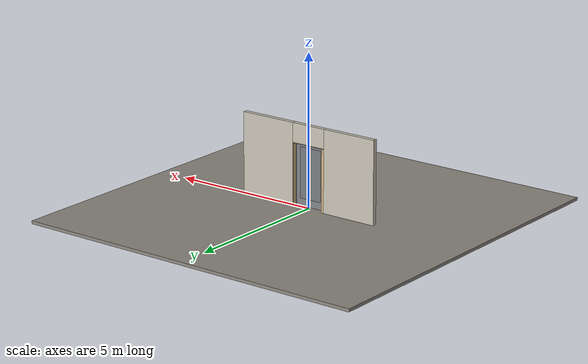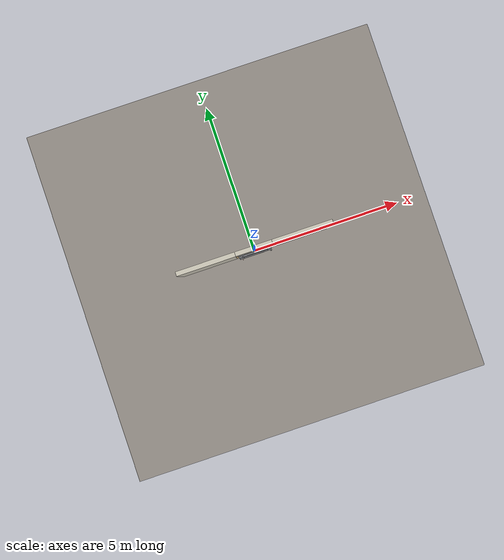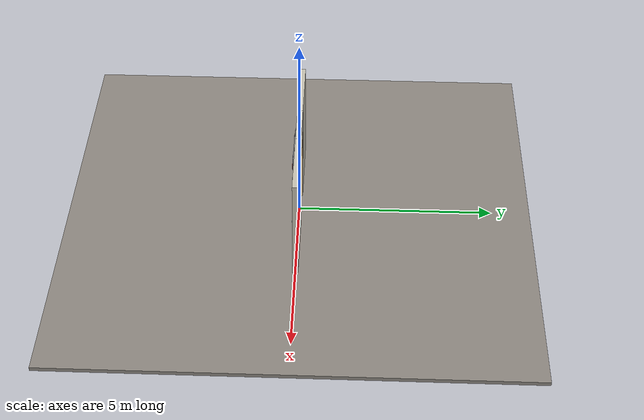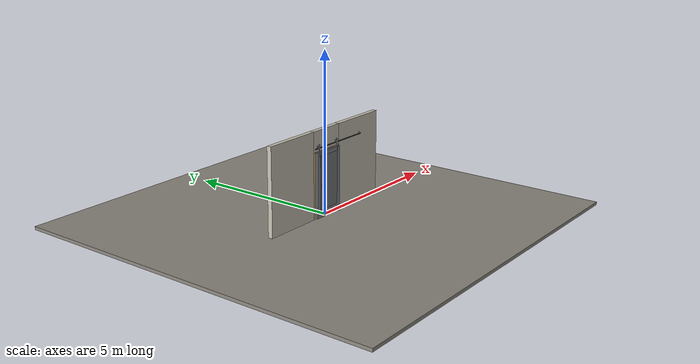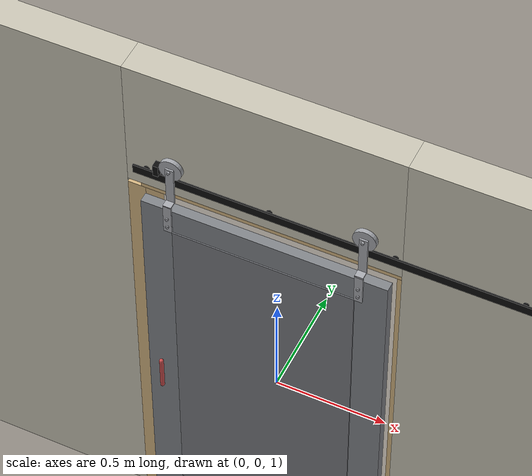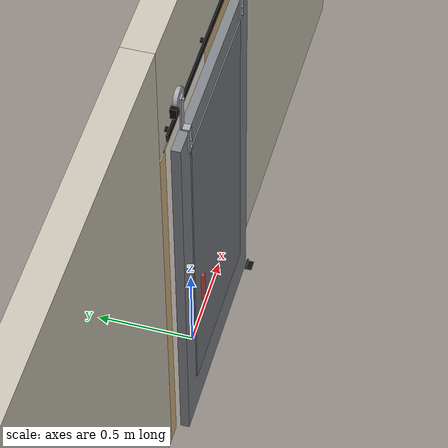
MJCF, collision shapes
<?xml version="1.0" ?>
<mujoco model="db0916_sliding_single_full">
  <compiler angle="radian" meshdir="../../hardware" texturedir="../../textures" autolimits="true" inertiafromgeom="false"/>
  <option timestep="0.002" integrator="implicitfast" cone="elliptic" impratio="10" noslip_iterations="3">
    <flag multiccd="enable"/>
  </option>
  <size memory="16M"/>
  <default>
    <geom condim="4" solref="0.005 1" solimp="0.95 0.99 0.001"/>
    <joint solreflimit="0.005 1" solimplimit="0.95 0.99 0.001"/>
    <tendon solreflimit="0.005 1"/>
    <equality solref="0.002 1"/>
  </default>
  <visual>
    <headlight ambient="0.4 0.4 0.4" diffuse="0.7 0.7 0.7" specular="0.2 0.2 0.2"/>
    <quality shadowsize="4096"/>
    <map znear="0.01" zfar="60"/>
  </visual>
  <asset>
    <mesh name="pull_1e5d69a91a" file="pull_1e5d69a91a.obj"/>
    <material name="mat_floor" rgba="0.55 0.53 0.5 1" specular="0.2" shininess="0.15" reflectance="0"/>
    <material name="mat_wall" rgba="0.78 0.76 0.7 1" specular="0.2" shininess="0.1" reflectance="0"/>
    <material name="mat_frame" rgba="0.82 0.7 0.5 1" specular="0.2" shininess="0.45" reflectance="0"/>
    <material name="mat_track" rgba="0.05 0.05 0.05 1" specular="0.38" shininess="0.3" reflectance="0.12"/>
    <material name="mat_leaf" rgba="0.5 0.51 0.53 1" specular="0.2" shininess="0.3" reflectance="0"/>
    <material name="mat_leaf_panel" rgba="0.46 0.469 0.488 1" specular="0.2" shininess="0.3" reflectance="0"/>
    <material name="mat_roller" rgba="0.65 0.66 0.68 1" specular="0.74" shininess="0.5" reflectance="0.36"/>
    <material name="mat_op_stainless" rgba="0.75 0.76 0.77 1" specular="0.8" shininess="0.65" reflectance="0.4"/>
    <material name="mat_hook" rgba="0.75 0.76 0.77 1" specular="0.8" shininess="0.65" reflectance="0.4"/>
    <texture name="skybox" type="skybox" builtin="gradient" rgb1="0.6 0.7 0.85" rgb2="0.9 0.92 0.95" width="256" height="256"/>
  </asset>
  <worldbody>
    <light name="sun" pos="1.5 -2.5 4" dir="-0.3 0.5 -0.8" directional="true" diffuse="0.8 0.8 0.8" specular="0.3 0.3 0.3" castshadow="true"/>
    <light name="fill" pos="-1.5 2.5 3" dir="0.3 -0.5 -0.7" directional="true" diffuse="0.35 0.35 0.4" castshadow="false"/>
    <camera name="robot_view" pos="0 -2.54875 1.73965" xyaxes="1 0 0 0 0.26963 0.962964" fovy="52"/>
    <camera name="far_view" pos="0 2.54875 1.73965" xyaxes="-1 0 0 0 -0.26963 0.962964" fovy="52"/>
    <camera name="iso" pos="1.93705 -2.14095 2.14745" xyaxes="0.741536 0.670913 0 -0.242917 0.268487 0.932151" fovy="46"/>
    <camera name="detail_handle" pos="-0.2635 -0.9965 1.33" xyaxes="0.97561 0.219512 0 -0.070934 0.315262 0.94635" fovy="38"/>
    <geom name="floor" type="box" size="6 6 0.05" pos="0 0 -0.05" material="mat_floor" group="0" contype="1" conaffinity="1" friction="0.8 0.005 0.0001" density="2400"/>
    <geom name="wall_left" type="box" size="0.93875 0.0725 1.35" pos="-1.56125 0 1.35" material="mat_wall" group="0" contype="1" conaffinity="1" friction="0.6 0.005 0.0001" density="800"/>
    <geom name="wall_right" type="box" size="0.96875 0.0725 1.35" pos="1.53125 0 1.35" material="mat_wall" group="0" contype="1" conaffinity="1" friction="0.6 0.005 0.0001" density="800"/>
    <geom name="wall_header" type="box" size="0.5925 0.0725 0.3145" pos="-0.03 0 2.3855" material="mat_wall" group="0" contype="1" conaffinity="1" friction="0.6 0.005 0.0001" density="800"/>
    <geom name="jamb_r" type="box" size="0.0095 0.0725 1.026" pos="0.553 0 1.026" material="mat_frame" group="0" contype="1" conaffinity="1" friction="0.6 0.005 0.0001" density="300"/>
    <geom name="jamb_head" type="box" size="0.5625 0.0725 0.0095" pos="0 0 2.0615" material="mat_frame" group="0" contype="1" conaffinity="1" friction="0.6 0.005 0.0001" density="300"/>
    <geom name="flat_track" type="box" size="1.117 0.004 0.02" pos="0.5335 -0.0945 2.172" material="mat_track" group="0" contype="1" conaffinity="1" friction="0.6 0.005 0.0001" density="7850"/>
    <geom name="track_standoff_0" type="cylinder" size="0.012 0.009" pos="-0.5335 -0.0815 2.172" quat="0.707107 -0.707107 0 0" material="mat_track" group="1" contype="0" conaffinity="0" density="7850"/>
    <geom name="track_standoff_1" type="cylinder" size="0.012 0.009" pos="0 -0.0815 2.172" quat="0.707107 -0.707107 0 0" material="mat_track" group="1" contype="0" conaffinity="0" density="7850"/>
    <geom name="track_standoff_2" type="cylinder" size="0.012 0.009" pos="0.5335 -0.0815 2.172" quat="0.707107 -0.707107 0 0" material="mat_track" group="1" contype="0" conaffinity="0" density="7850"/>
    <geom name="track_standoff_3" type="cylinder" size="0.012 0.009" pos="1.067 -0.0815 2.172" quat="0.707107 -0.707107 0 0" material="mat_track" group="1" contype="0" conaffinity="0" density="7850"/>
    <geom name="track_standoff_4" type="cylinder" size="0.012 0.009" pos="1.6005 -0.0815 2.172" quat="0.707107 -0.707107 0 0" material="mat_track" group="1" contype="0" conaffinity="0" density="7850"/>
    <geom name="leaf_track_stop_l" type="box" size="0.012 0.016 0.027" pos="-0.4755 -0.0945 2.217" material="mat_track" group="0" contype="1" conaffinity="1" friction="0.6 0.005 0.0001" density="7850"/>
    <geom name="leaf_track_stop_r" type="box" size="0.012 0.016 0.027" pos="1.5425 -0.0945 2.217" material="mat_track" group="0" contype="1" conaffinity="1" friction="0.6 0.005 0.0001" density="7850"/>
    <geom name="jamb_latch_0" type="box" size="0.0395 0.0725 1.026" pos="-0.583 0 1.026" material="mat_frame" group="0" contype="1" conaffinity="1" friction="0.6 0.005 0.0001" density="300"/>
    <geom name="floor_guide_n" type="box" size="0.028 0.004 0.009" pos="0.5335 -0.1415 0.009" material="mat_track" group="0" contype="1" conaffinity="1" friction="0.6 0.005 0.0001" density="7850"/>
    <geom name="floor_guide_n_foot" type="box" size="0.028 0.018 0.002" pos="0.5335 -0.1555 0.002" material="mat_track" group="0" contype="1" conaffinity="1" friction="0.6 0.005 0.0001" density="7850"/>
    <geom name="floor_guide_p" type="box" size="0.028 0.004 0.009" pos="0.5335 -0.0875 0.009" material="mat_track" group="0" contype="1" conaffinity="1" friction="0.6 0.005 0.0001" density="7850"/>
    <geom name="floor_guide_p_foot" type="box" size="0.028 0.018 0.002" pos="0.5335 -0.0735 0.002" material="mat_track" group="0" contype="1" conaffinity="1" friction="0.6 0.005 0.0001" density="7850"/>
    <site name="approach_point" pos="0 -1.5 0" quat="1 0 0 0" size="0.05" rgba="0.2 0.9 0.2 0.5" group="4"/>
    <site name="goal_point" pos="0 1.5 0" quat="1 0 0 0" size="0.05" rgba="0.2 0.9 0.2 0.5" group="4"/>
    <site name="door_plane_center" pos="0 0 1.026" quat="1 0 0 0" size="0.02" rgba="0.2 0.9 0.2 0.5" group="4"/>
    <body name="leaf" pos="0 -0.1145 0">
      <inertial pos="-0.002615 0.000036 1.092293" mass="72.048752" quat="0.500006 0.500183 -0.499044 0.500765" diaginertia="7.199859916 28.335940273 35.506248836"/>
      <joint name="leaf_slide" type="slide" axis="1 0 0" limited="true" range="0 1.067" damping="5.602438" frictionloss="28.262276" armature="0.5"/>
      <geom name="leaf_slab" type="box" size="0.5335 0.022 1.016" pos="0 0 1.028" material="mat_leaf" group="0" contype="1" conaffinity="1" friction="0.4 0.005 0.0001" density="1"/>
      <geom name="leaf_panel_0_n" type="box" size="0.39613 0.003 0.83344" pos="0 -0.025 1.08896" material="mat_leaf_panel" group="1" contype="0" conaffinity="0" density="1"/>
      <geom name="leaf_panel_0_p" type="box" size="0.39613 0.003 0.83344" pos="0 0.025 1.08896" material="mat_leaf_panel" group="1" contype="0" conaffinity="0" density="1"/>
      <geom name="leaf_hanger_wheel_0" type="cylinder" size="0.05 0.01" pos="-0.4135 0.02 2.242" quat="0.707107 -0.707107 0 0" material="mat_roller" group="1" contype="0" conaffinity="0" density="7850"/>
      <geom name="leaf_hanger_mount_0" type="box" size="0.018 0.004 0.0725" pos="-0.4135 -0.026 1.9965" material="mat_roller" group="1" contype="0" conaffinity="0" density="7850"/>
      <geom name="leaf_hanger_strap_0" type="box" size="0.018 0.004 0.0925" pos="-0.4135 0.006 2.1615" material="mat_roller" group="1" contype="0" conaffinity="0" density="7850"/>
      <geom name="leaf_hanger_bend_0" type="box" size="0.018 0.02 0.004" pos="-0.4135 -0.01 2.069" material="mat_roller" group="1" contype="0" conaffinity="0" density="7850"/>
      <geom name="leaf_hanger_axle_0" type="cylinder" size="0.006 0.021" pos="-0.4135 0.013 2.242" quat="0.707107 -0.707107 0 0" material="mat_roller" group="1" contype="0" conaffinity="0" density="7850"/>
      <geom name="leaf_hanger_bolt_0_90" type="cylinder" size="0.007 0.004" pos="-0.4135 -0.032 1.954" quat="0.707107 -0.707107 0 0" material="mat_roller" group="1" contype="0" conaffinity="0" density="7850"/>
      <geom name="leaf_hanger_bolt_0_45" type="cylinder" size="0.007 0.004" pos="-0.4135 -0.032 1.999" quat="0.707107 -0.707107 0 0" material="mat_roller" group="1" contype="0" conaffinity="0" density="7850"/>
      <geom name="leaf_hanger_wheel_1" type="cylinder" size="0.05 0.01" pos="0.4135 0.02 2.242" quat="0.707107 -0.707107 0 0" material="mat_roller" group="1" contype="0" conaffinity="0" density="7850"/>
      <geom name="leaf_hanger_mount_1" type="box" size="0.018 0.004 0.0725" pos="0.4135 -0.026 1.9965" material="mat_roller" group="1" contype="0" conaffinity="0" density="7850"/>
      <geom name="leaf_hanger_strap_1" type="box" size="0.018 0.004 0.0925" pos="0.4135 0.006 2.1615" material="mat_roller" group="1" contype="0" conaffinity="0" density="7850"/>
      <geom name="leaf_hanger_bend_1" type="box" size="0.018 0.02 0.004" pos="0.4135 -0.01 2.069" material="mat_roller" group="1" contype="0" conaffinity="0" density="7850"/>
      <geom name="leaf_hanger_axle_1" type="cylinder" size="0.006 0.021" pos="0.4135 0.013 2.242" quat="0.707107 -0.707107 0 0" material="mat_roller" group="1" contype="0" conaffinity="0" density="7850"/>
      <geom name="leaf_hanger_bolt_1_90" type="cylinder" size="0.007 0.004" pos="0.4135 -0.032 1.954" quat="0.707107 -0.707107 0 0" material="mat_roller" group="1" contype="0" conaffinity="0" density="7850"/>
      <geom name="leaf_hanger_bolt_1_45" type="cylinder" size="0.007 0.004" pos="0.4135 -0.032 1.999" quat="0.707107 -0.707107 0 0" material="mat_roller" group="1" contype="0" conaffinity="0" density="7850"/>
      <geom name="leaf_pull_n" type="mesh" mesh="pull_1e5d69a91a" pos="-0.4435 -0.022 1.05" quat="0 0 -0.707107 0.707107" material="mat_op_stainless" group="1" contype="0" conaffinity="0" density="3000"/>
      <geom name="leaf_pull_col_n" type="capsule" size="0.0095 0.08" pos="-0.4435 -0.082 1.05" material="mat_op_stainless" group="3" contype="1" conaffinity="1" rgba="0.8 0.3 0.3 0.25" friction="0.7 0.01 0.0001" density="3000"/>
      <site name="leaf_pull_grip_n" pos="-0.4435 -0.082 1.05" quat="1 0 0 0" size="0.012" rgba="0.2 0.9 0.2 0.5" group="4"/>
      <site name="leaf_edge_mid" pos="-0.5335 0 1.028" quat="1 0 0 0" size="0.02" rgba="0.2 0.9 0.2 0.5" group="4"/>
    </body>
  </worldbody>
  <sensor>
    <jointpos name="leaf_slide_pos" joint="leaf_slide"/>
    <jointvel name="leaf_slide_vel" joint="leaf_slide"/>
  </sensor>
</mujoco>
